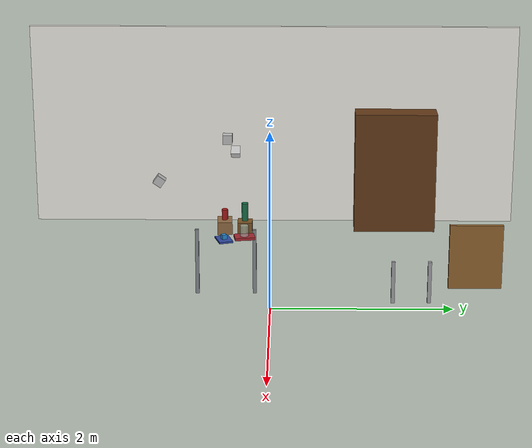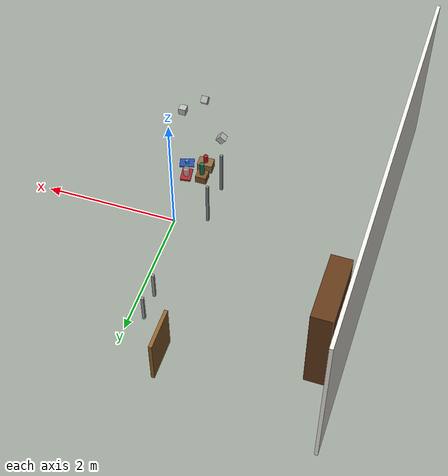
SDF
<sdf version="1.10">
 <world name="bps_room">
  <model name="wall_west">
   <static>true</static>
   <pose>-3 0 1.25 0 0 0</pose>
   <link name="link">
    <collision name="collision">
     <geometry><box><size>0.050000000000000003 6 2.5</size></box></geometry>
    </collision>
    <visual name="visual">
     <geometry><box><size>0.050000000000000003 6 2.5</size></box></geometry>
     <material>
      <ambient>0.930000007 0.920000017 0.889999986 1</ambient>
      <diffuse>0.930000007 0.920000017 0.889999986 1</diffuse>
     </material>
    </visual>
    <inertial>
     <mass>1</mass>
     <inertia><ixx>1</ixx><ixy>0</ixy><ixz>0</ixz><iyy>1</iyy><iyz>0</iyz><izz>1</izz></inertia>
    </inertial>
   </link>
  </model>
  <model name="bookshelf_body">
   <static>true</static>
   <pose>-2.7000000000000002 1.5 0.75 0 0 0</pose>
   <link name="link">
    <collision name="collision"><geometry><box><size>0.29999999999999999 1 1.5</size></box></geometry></collision>
    <visual name="visual">
     <geometry><box><size>0.29999999999999999 1 1.5</size></box></geometry>
     <material>
      <ambient>0.379999995 0.219999999 0.0900000036 1</ambient>
      <diffuse>0.379999995 0.219999999 0.0900000036 1</diffuse>
     </material>
    </visual>
    <inertial>
     <mass>1</mass>
     <inertia><ixx>1</ixx><ixy>0</ixy><ixz>0</ixz><iyy>1</iyy><iyz>0</iyz><izz>1</izz></inertia>
    </inertial>
   </link>
  </model>
  <model name="shelf_1">
   <static>true</static>
   <pose>-2.7000000000000002 1.5 0.40000000000000002 0 0 0</pose>
   <link name="link">
    <collision name="collision">
     <geometry><box><size>0.28000000000000003 0.94999999999999996 0.02</size></box></geometry>
    </collision>
    <visual name="visual">
     <geometry><box><size>0.28000000000000003 0.94999999999999996 0.02</size></box></geometry>
     <material>
      <ambient>0.5 0.319999993 0.140000001 1</ambient>
      <diffuse>0.5 0.319999993 0.140000001 1</diffuse>
     </material>
    </visual>
    <inertial>
     <mass>1</mass>
     <inertia><ixx>1</ixx><ixy>0</ixy><ixz>0</ixz><iyy>1</iyy><iyz>0</iyz><izz>1</izz></inertia>
    </inertial>
   </link>
  </model>
  <model name="shelf_2">
   <static>true</static>
   <pose>-2.7000000000000002 1.5 0.84999999999999998 0 0 0</pose>
   <link name="link">
    <collision name="collision">
     <geometry><box><size>0.28000000000000003 0.94999999999999996 0.02</size></box></geometry>
    </collision>
    <visual name="visual">
     <geometry><box><size>0.28000000000000003 0.94999999999999996 0.02</size></box></geometry>
     <material>
      <ambient>0.5 0.319999993 0.140000001 1</ambient>
      <diffuse>0.5 0.319999993 0.140000001 1</diffuse>
     </material>
    </visual>
    <inertial>
     <mass>1</mass>
     <inertia><ixx>1</ixx><ixy>0</ixy><ixz>0</ixz><iyy>1</iyy><iyz>0</iyz><izz>1</izz></inertia>
    </inertial>
   </link>
  </model>
  <model name="shelf_3">
   <static>true</static>
   <pose>-2.7000000000000002 1.5 1.25 0 0 0</pose>
   <link name="link">
    <collision name="collision">
     <geometry><box><size>0.28000000000000003 0.94999999999999996 0.02</size></box></geometry>
    </collision>
    <visual name="visual">
     <geometry><box><size>0.28000000000000003 0.94999999999999996 0.02</size></box></geometry>
     <material>
      <ambient>0.5 0.319999993 0.140000001 1</ambient>
      <diffuse>0.5 0.319999993 0.140000001 1</diffuse>
     </material>
    </visual>
    <inertial>
     <mass>1</mass>
     <inertia><ixx>1</ixx><ixy>0</ixy><ixz>0</ixz><iyy>1</iyy><iyz>0</iyz><izz>1</izz></inertia>
    </inertial>
   </link>
  </model>
  <model name="books_row1">
   <static>true</static>
   <pose>-2.6200000000000001 1.5 0.62 0 0 0</pose>
   <link name="link">
    <visual name="visual">
     <geometry><box><size>0.040000000000000001 0.80000000000000004 0.20000000000000001</size></box></geometry>
     <material>
      <ambient>0.779999971 0.180000007 0.180000007 1</ambient>
      <diffuse>0.779999971 0.180000007 0.180000007 1</diffuse>
     </material>
    </visual>
    <inertial>
     <mass>1</mass>
     <inertia><ixx>1</ixx><ixy>0</ixy><ixz>0</ixz><iyy>1</iyy><iyz>0</iyz><izz>1</izz></inertia>
    </inertial>
   </link>
  </model>
  <model name="books_row2">
   <static>true</static>
   <pose>-2.6200000000000001 1.5 1.0600000000000001 0 0 0</pose>
   <link name="link">
    <visual name="visual">
     <geometry><box><size>0.040000000000000001 0.69999999999999996 0.17999999999999999</size></box></geometry>
     <material>
      <ambient>0.180000007 0.319999993 0.720000029 1</ambient>
      <diffuse>0.180000007 0.319999993 0.720000029 1</diffuse>
     </material>
    </visual>
    <inertial>
     <mass>1</mass>
     <inertia><ixx>1</ixx><ixy>0</ixy><ixz>0</ixz><iyy>1</iyy><iyz>0</iyz><izz>1</izz></inertia>
    </inertial>
   </link>
  </model>
  <model name="desk_leg_left">
   <static>true</static>
   <pose>-0.65000000000000002 2.2999999999999998 0.375 0 0 0</pose>
   <link name="link">
    <collision name="collision">
     <geometry><box><size>0.050000000000000003 0.59999999999999998 0.75</size></box></geometry>
    </collision>
    <visual name="visual">
     <geometry><box><size>0.050000000000000003 0.59999999999999998 0.75</size></box></geometry>
     <material>
      <ambient>0.550000012 0.379999995 0.180000007 1</ambient>
      <diffuse>0.550000012 0.379999995 0.180000007 1</diffuse>
     </material>
    </visual>
    <inertial>
     <mass>1</mass>
     <inertia><ixx>1</ixx><ixy>0</ixy><ixz>0</ixz><iyy>1</iyy><iyz>0</iyz><izz>1</izz></inertia>
    </inertial>
   </link>
  </model>
  <model name="chair_leg_fl">
   <static>true</static>
   <pose>-0.20000000000000001 1.3500000000000001 0.23999999999999999 0 0 0</pose>
   <link name="link">
    <collision name="collision">
     <geometry><box><size>0.040000000000000001 0.040000000000000001 0.47999999999999998</size></box></geometry>
    </collision>
    <visual name="visual">
     <geometry><box><size>0.040000000000000001 0.040000000000000001 0.47999999999999998</size></box></geometry>
     <material>
      <ambient>0.600000024 0.600000024 0.620000005 1</ambient>
      <diffuse>0.600000024 0.600000024 0.620000005 1</diffuse>
     </material>
    </visual>
    <inertial>
     <mass>1</mass>
     <inertia><ixx>1</ixx><ixy>0</ixy><ixz>0</ixz><iyy>1</iyy><iyz>0</iyz><izz>1</izz></inertia>
    </inertial>
   </link>
  </model>
  <model name="chair_leg_bl">
   <static>true</static>
   <pose>-0.20000000000000001 1.75 0.23999999999999999 0 0 0</pose>
   <link name="link">
    <collision name="collision">
     <geometry><box><size>0.040000000000000001 0.040000000000000001 0.47999999999999998</size></box></geometry>
    </collision>
    <visual name="visual">
     <geometry><box><size>0.040000000000000001 0.040000000000000001 0.47999999999999998</size></box></geometry>
     <material>
      <ambient>0.600000024 0.600000024 0.620000005 1</ambient>
      <diffuse>0.600000024 0.600000024 0.620000005 1</diffuse>
     </material>
    </visual>
    <inertial>
     <mass>1</mass>
     <inertia><ixx>1</ixx><ixy>0</ixy><ixz>0</ixz><iyy>1</iyy><iyz>0</iyz><izz>1</izz></inertia>
    </inertial>
   </link>
  </model>
  <model name="table_leg_fl">
   <static>true</static>
   <pose>-0.46999999999999997 -0.81999999999999995 0.375 0 0 0</pose>
   <link name="link">
    <collision name="collision">
     <geometry><box><size>0.040000000000000001 0.040000000000000001 0.75</size></box></geometry>
    </collision>
    <visual name="visual">
     <geometry><box><size>0.040000000000000001 0.040000000000000001 0.75</size></box></geometry>
     <material>
      <ambient>0.5 0.519999981 0.540000021 1</ambient>
      <diffuse>0.5 0.519999981 0.540000021 1</diffuse>
     </material>
    </visual>
    <inertial>
     <mass>1</mass>
     <inertia><ixx>1</ixx><ixy>0</ixy><ixz>0</ixz><iyy>1</iyy><iyz>0</iyz><izz>1</izz></inertia>
    </inertial>
   </link>
  </model>
  <model name="table_leg_bl">
   <static>true</static>
   <pose>-0.46999999999999997 -0.17999999999999999 0.375 0 0 0</pose>
   <link name="link">
    <collision name="collision">
     <geometry><box><size>0.040000000000000001 0.040000000000000001 0.75</size></box></geometry>
    </collision>
    <visual name="visual">
     <geometry><box><size>0.040000000000000001 0.040000000000000001 0.75</size></box></geometry>
     <material>
      <ambient>0.5 0.519999981 0.540000021 1</ambient>
      <diffuse>0.5 0.519999981 0.540000021 1</diffuse>
     </material>
    </visual>
    <inertial>
     <mass>1</mass>
     <inertia><ixx>1</ixx><ixy>0</ixy><ixz>0</ixz><iyy>1</iyy><iyz>0</iyz><izz>1</izz></inertia>
    </inertial>
   </link>
  </model>
  <model name="obj_storage_box">
   <static>false</static>
   <pose>-0.34000000000000002 -0.5 0.83999999999999997 0 0 0.049999999999999989</pose>
   <link name="link">
    <collision name="collision">
     <geometry><box><size>0.22 0.16 0.14000000000000001</size></box></geometry>
    </collision>
    <visual name="visual">
     <geometry><box><size>0.22 0.16 0.14000000000000001</size></box></geometry>
     <material>
      <ambient>0.550000012 0.400000006 0.25 1</ambient>
      <diffuse>0.550000012 0.400000006 0.25 1</diffuse>
      <specular>0.200000003 0.200000003 0.200000003 1</specular>
     </material>
     <plugin name="gz::sim::systems::Label" filename="gz-sim-label-system"><label>3</label></plugin>
    </visual>
    <inertial>
     <mass>1</mass>
     <inertia><ixx>1</ixx><ixy>0</ixy><ixz>0</ixz><iyy>1</iyy><iyz>0</iyz><izz>1</izz></inertia>
    </inertial>
    <sensor name="obj_storage_box_contact_sensor" type="contact">
     <contact><collision>collision</collision></contact>
     <update_rate>30</update_rate>
     <always_on>true</always_on>
    </sensor>
   </link>
  </model>
  <model name="obj_wooden_crate">
   <static>false</static>
   <pose>-0.35999999999999999 -0.28000000000000003 0.82999999999999996 0 0 0</pose>
   <link name="link">
    <collision name="collision"><geometry><box><size>0.16 0.16 0.12</size></box></geometry></collision>
    <visual name="visual">
     <geometry><box><size>0.16 0.16 0.12</size></box></geometry>
     <material>
      <ambient>0.479999989 0.319999993 0.140000001 1</ambient>
      <diffuse>0.479999989 0.319999993 0.140000001 1</diffuse>
      <specular>0.150000006 0.150000006 0.150000006 1</specular>
     </material>
     <plugin name="gz::sim::systems::Label" filename="gz-sim-label-system"><label>4</label></plugin>
    </visual>
    <inertial>
     <mass>1</mass>
     <inertia><ixx>1</ixx><ixy>0</ixy><ixz>0</ixz><iyy>1</iyy><iyz>0</iyz><izz>1</izz></inertia>
    </inertial>
    <sensor name="obj_wooden_crate_contact_sensor" type="contact">
     <contact><collision>collision</collision></contact>
     <update_rate>30</update_rate>
     <always_on>true</always_on>
    </sensor>
   </link>
  </model>
  <model name="obj_bottle">
   <static>false</static>
   <pose>-0.35999999999999999 -0.28000000000000003 0.995 0 0 0.20000000000000001</pose>
   <link name="link">
    <collision name="collision">
     <geometry>
      <cylinder><radius>0.035000000000000003</radius><length>0.20000000000000001</length></cylinder>
     </geometry>
    </collision>
    <visual name="visual">
     <geometry>
      <cylinder><radius>0.035000000000000003</radius><length>0.20000000000000001</length></cylinder>
     </geometry>
     <material>
      <ambient>0.100000001 0.419999987 0.280000001 1</ambient>
      <diffuse>0.100000001 0.419999987 0.280000001 1</diffuse>
      <specular>0.400000006 0.400000006 0.400000006 1</specular>
     </material>
     <plugin name="gz::sim::systems::Label" filename="gz-sim-label-system"><label>5</label></plugin>
    </visual>
    <inertial>
     <mass>1</mass>
     <inertia><ixx>1</ixx><ixy>0</ixy><ixz>0</ixz><iyy>1</iyy><iyz>0</iyz><izz>1</izz></inertia>
    </inertial>
    <sensor name="obj_bottle_contact_sensor" type="contact">
     <contact><collision>collision</collision></contact>
     <update_rate>30</update_rate>
     <always_on>true</always_on>
    </sensor>
   </link>
  </model>
  <model name="obj_notebook">
   <static>false</static>
   <pose>-0.050000000000000003 -0.5 0.78000000000000003 0 0 0.3000000000000001</pose>
   <link name="link">
    <collision name="collision">
     <geometry><box><size>0.20999999999999999 0.14999999999999999 0.02</size></box></geometry>
    </collision>
    <visual name="visual">
     <geometry><box><size>0.20999999999999999 0.14999999999999999 0.02</size></box></geometry>
     <material>
      <ambient>0.180000007 0.280000001 0.620000005 1</ambient>
      <diffuse>0.180000007 0.280000001 0.620000005 1</diffuse>
      <specular>0.200000003 0.200000003 0.200000003 1</specular>
     </material>
     <plugin name="gz::sim::systems::Label" filename="gz-sim-label-system"><label>9</label></plugin>
    </visual>
    <inertial>
     <mass>1</mass>
     <inertia><ixx>1</ixx><ixy>0</ixy><ixz>0</ixz><iyy>1</iyy><iyz>0</iyz><izz>1</izz></inertia>
    </inertial>
    <sensor name="obj_notebook_contact_sensor" type="contact">
     <contact><collision>collision</collision></contact>
     <update_rate>30</update_rate>
     <always_on>true</always_on>
    </sensor>
   </link>
  </model>
  <model name="obj_book">
   <static>false</static>
   <pose>-0.12 -0.28000000000000003 0.78500000000000003 0 0 0.14999999999999994</pose>
   <link name="link">
    <collision name="collision">
     <geometry><box><size>0.14999999999999999 0.22 0.029999999999999999</size></box></geometry>
    </collision>
    <visual name="visual">
     <geometry><box><size>0.14999999999999999 0.22 0.029999999999999999</size></box></geometry>
     <material>
      <ambient>0.620000005 0.150000006 0.180000007 1</ambient>
      <diffuse>0.620000005 0.150000006 0.180000007 1</diffuse>
      <specular>0.150000006 0.150000006 0.150000006 1</specular>
     </material>
     <plugin name="gz::sim::systems::Label" filename="gz-sim-label-system"><label>10</label></plugin>
    </visual>
    <inertial>
     <mass>1</mass>
     <inertia><ixx>1</ixx><ixy>0</ixy><ixz>0</ixz><iyy>1</iyy><iyz>0</iyz><izz>1</izz></inertia>
    </inertial>
    <sensor name="obj_book_contact_sensor" type="contact">
     <contact><collision>collision</collision></contact>
     <update_rate>30</update_rate>
     <always_on>true</always_on>
    </sensor>
   </link>
  </model>
  <model name="obj_toy_cube">
   <static>false</static>
   <pose>-0.050000000000000003 -0.5 0.81499999999999995 0 0 0.5</pose>
   <link name="link">
    <collision name="collision">
     <geometry><box><size>0.050000000000000003 0.050000000000000003 0.050000000000000003</size></box></geometry>
    </collision>
    <visual name="visual">
     <geometry><box><size>0.050000000000000003 0.050000000000000003 0.050000000000000003</size></box></geometry>
     <material>
      <ambient>0.150000006 0.550000012 0.850000024 1</ambient>
      <diffuse>0.150000006 0.550000012 0.850000024 1</diffuse>
      <specular>0.300000012 0.300000012 0.300000012 1</specular>
     </material>
     <plugin name="gz::sim::systems::Label" filename="gz-sim-label-system"><label>11</label></plugin>
    </visual>
    <inertial>
     <mass>1</mass>
     <inertia><ixx>1</ixx><ixy>0</ixy><ixz>0</ixz><iyy>1</iyy><iyz>0</iyz><izz>1</izz></inertia>
    </inertial>
    <sensor name="obj_toy_cube_contact_sensor" type="contact">
     <contact><collision>collision</collision></contact>
     <update_rate>30</update_rate>
     <always_on>true</always_on>
    </sensor>
   </link>
  </model>
  <model name="obj_can">
   <static>false</static>
   <pose>-0.34000000000000002 -0.5 0.97250000000000003 0 0 0</pose>
   <link name="link">
    <collision name="collision">
     <geometry><cylinder><radius>0.033000000000000002</radius><length>0.115</length></cylinder></geometry>
    </collision>
    <visual name="visual">
     <geometry><cylinder><radius>0.033000000000000002</radius><length>0.115</length></cylinder></geometry>
     <material>
      <ambient>0.649999976 0.100000001 0.100000001 1</ambient>
      <diffuse>0.649999976 0.100000001 0.100000001 1</diffuse>
      <specular>0.600000024 0.600000024 0.600000024 1</specular>
     </material>
     <plugin name="gz::sim::systems::Label" filename="gz-sim-label-system"><label>13</label></plugin>
    </visual>
    <inertial>
     <mass>1</mass>
     <inertia><ixx>1</ixx><ixy>0</ixy><ixz>0</ixz><iyy>1</iyy><iyz>0</iyz><izz>1</izz></inertia>
    </inertial>
    <sensor name="obj_can_contact_sensor" type="contact">
     <contact><collision>collision</collision></contact>
     <update_rate>30</update_rate>
     <always_on>true</always_on>
    </sensor>
   </link>
  </model>
  <model name="obj_glass_jar">
   <static>false</static>
   <pose>-0.12 -0.28000000000000003 0.85999999999999999 0 0 0</pose>
   <link name="link">
    <collision name="collision">
     <geometry><cylinder><radius>0.044999999999999998</radius><length>0.12</length></cylinder></geometry>
    </collision>
    <visual name="visual">
     <geometry><cylinder><radius>0.044999999999999998</radius><length>0.12</length></cylinder></geometry>
     <material>
      <ambient>0.75 0.879999995 0.850000024 0.550000012</ambient>
      <diffuse>0.75 0.879999995 0.850000024 0.550000012</diffuse>
      <specular>0.600000024 0.600000024 0.600000024 1</specular>
     </material>
     <plugin name="gz::sim::systems::Label" filename="gz-sim-label-system"><label>14</label></plugin>
    </visual>
    <inertial>
     <mass>1</mass>
     <inertia><ixx>1</ixx><ixy>0</ixy><ixz>0</ixz><iyy>1</iyy><iyz>0</iyz><izz>1</izz></inertia>
    </inertial>
    <sensor name="obj_glass_jar_contact_sensor" type="contact">
     <contact><collision>collision</collision></contact>
     <update_rate>30</update_rate>
     <always_on>true</always_on>
    </sensor>
   </link>
  </model>
  <model name="depth_camera">
   <static>true</static>
   <pose>-0.092614345252513885 -0.5 1.9686205387115479 3.1415899979989477 1.57079000476762 3.1415899979989477</pose>
   <link name="link">
    <pose>0.050000000000000003 0.050000000000000003 0.050000000000000003 0 0 0</pose>
    <inertial>
     <mass>0.10000000000000001</mass>
     <inertia>
      <ixx>0.00016666700000000001</ixx>
      <iyy>0.00016666700000000001</iyy>
      <izz>0.00016666700000000001</izz>
      <ixy>0</ixy>
      <ixz>0</ixz>
      <iyz>0</iyz>
     </inertia>
    </inertial>
    <collision name="collision">
     <geometry><box><size>0.10000000000000001 0.10000000000000001 0.10000000000000001</size></box></geometry>
    </collision>
    <visual name="visual">
     <geometry><box><size>0.10000000000000001 0.10000000000000001 0.10000000000000001</size></box></geometry>
    </visual>
    <sensor name="depth_camera1" type="depth_camera">
     <topic>depth_camera</topic>
     <update_rate>10</update_rate>
     <enable_metrics>false</enable_metrics>
     <camera>
      <horizontal_fov>1.2</horizontal_fov>
      <image>
       <width>640</width>
       <height>480</height>
       <format>R_FLOAT32</format>
       <anti_aliasing>4</anti_aliasing>
      </image>
      <camera_info_topic>__default__</camera_info_topic>
      <triggered>false</triggered>
      <clip><near>0.10000000000000001</near><far>2</far></clip>
      <save enabled="false"><path>__default__</path></save>
      <visibility_mask>4294967295</visibility_mask>
      <noise><type>none</type><mean>0</mean><stddev>0</stddev></noise>
      <distortion><k1>0</k1><k2>0</k2><k3>0</k3><p1>0</p1><p2>0</p2><center>0.5 0.5</center></distortion>
      <lens>
       <type>stereographic</type>
       <scale_to_hfov>true</scale_to_hfov>
       <cutoff_angle>1.5707963267948966</cutoff_angle>
       <env_texture_size>256</env_texture_size>
      </lens>
     </camera>
    </sensor>
    <sensor name="rgb_camera" type="camera">
     <topic>rgb_camera</topic>
     <update_rate>10</update_rate>
     <enable_metrics>false</enable_metrics>
     <camera>
      <horizontal_fov>1.2</horizontal_fov>
      <image><width>640</width><height>480</height><format>RGB_INT8</format><anti_aliasing>4</anti_aliasing></image>
      <camera_info_topic>__default__</camera_info_topic>
      <triggered>false</triggered>
      <clip><near>0.10000000000000001</near><far>2</far></clip>
      <save enabled="false"><path>__default__</path></save>
      <visibility_mask>4294967295</visibility_mask>
      <noise><type>none</type><mean>0</mean><stddev>0</stddev></noise>
      <distortion><k1>0</k1><k2>0</k2><k3>0</k3><p1>0</p1><p2>0</p2><center>0.5 0.5</center></distortion>
      <lens>
       <type>stereographic</type>
       <scale_to_hfov>true</scale_to_hfov>
       <cutoff_angle>1.5707963267948966</cutoff_angle>
       <env_texture_size>256</env_texture_size>
      </lens>
     </camera>
    </sensor>
    <sensor name="semantic_camera" type="segmentation_camera">
     <topic>semantic_camera</topic>
     <update_rate>10</update_rate>
     <enable_metrics>false</enable_metrics>
     <camera>
      <horizontal_fov>1.2</horizontal_fov>
      <image><width>640</width><height>480</height></image>
      <clip><near>0.1</near><far>100</far></clip>
      <segmentation_type>semantic</segmentation_type>
     </camera>
    </sensor>
   </link>
  </model>
  <model name="depth_camera_v4">
   <static>true</static>
   <pose>-0.691454276353206 -0.4386666666666666 1.6127111097856446 -0.0 0.8726646259971648 -8.636002062691952e-17</pose>
   <link name="link">
    <pose>0.050000000000000003 0.050000000000000003 0.050000000000000003 0 0 0</pose>
    <inertial>
     <mass>0.10000000000000001</mass>
     <inertia>
      <ixx>0.00016666700000000001</ixx>
      <iyy>0.00016666700000000001</iyy>
      <izz>0.00016666700000000001</izz>
      <ixy>0</ixy>
      <ixz>0</ixz>
      <iyz>0</iyz>
     </inertia>
    </inertial>
    <collision name="collision">
     <geometry><box><size>0.10000000000000001 0.10000000000000001 0.10000000000000001</size></box></geometry>
    </collision>
    <visual name="visual">
     <geometry><box><size>0.10000000000000001 0.10000000000000001 0.10000000000000001</size></box></geometry>
    </visual>
    <sensor name="depth_camera4" type="depth_camera">
     <topic>depth_camera_v4</topic>
     <update_rate>10</update_rate>
     <enable_metrics>false</enable_metrics>
     <camera>
      <horizontal_fov>1.2</horizontal_fov>
      <image>
       <width>640</width>
       <height>480</height>
       <format>R_FLOAT32</format>
       <anti_aliasing>4</anti_aliasing>
      </image>
      <camera_info_topic>__default__</camera_info_topic>
      <triggered>false</triggered>
      <clip><near>0.10000000000000001</near><far>2</far></clip>
      <save enabled="false"><path>__default__</path></save>
      <visibility_mask>4294967295</visibility_mask>
      <noise><type>none</type><mean>0</mean><stddev>0</stddev></noise>
      <distortion><k1>0</k1><k2>0</k2><k3>0</k3><p1>0</p1><p2>0</p2><center>0.5 0.5</center></distortion>
      <lens>
       <type>stereographic</type>
       <scale_to_hfov>true</scale_to_hfov>
       <cutoff_angle>1.5707963267948966</cutoff_angle>
       <env_texture_size>256</env_texture_size>
      </lens>
     </camera>
    </sensor>
    <sensor name="rgb_camera4" type="camera">
     <topic>rgb_camera_v4</topic>
     <update_rate>10</update_rate>
     <enable_metrics>false</enable_metrics>
     <camera>
      <horizontal_fov>1.2</horizontal_fov>
      <image><width>640</width><height>480</height><format>RGB_INT8</format><anti_aliasing>4</anti_aliasing></image>
      <camera_info_topic>__default__</camera_info_topic>
      <triggered>false</triggered>
      <clip><near>0.10000000000000001</near><far>2</far></clip>
      <save enabled="false"><path>__default__</path></save>
      <visibility_mask>4294967295</visibility_mask>
      <noise><type>none</type><mean>0</mean><stddev>0</stddev></noise>
      <distortion><k1>0</k1><k2>0</k2><k3>0</k3><p1>0</p1><p2>0</p2><center>0.5 0.5</center></distortion>
      <lens>
       <type>stereographic</type>
       <scale_to_hfov>true</scale_to_hfov>
       <cutoff_angle>1.5707963267948966</cutoff_angle>
       <env_texture_size>256</env_texture_size>
      </lens>
     </camera>
    </sensor>
    <sensor name="semantic_camera4" type="segmentation_camera">
     <topic>semantic_camera_v4</topic>
     <update_rate>10</update_rate>
     <enable_metrics>false</enable_metrics>
     <camera>
      <horizontal_fov>1.2</horizontal_fov>
      <image><width>640</width><height>480</height></image>
      <clip><near>0.1</near><far>100</far></clip>
      <segmentation_type>semantic</segmentation_type>
     </camera>
    </sensor>
   </link>
  </model>
  <model name="depth_camera_v5">
   <static>true</static>
   <pose>-0.048666666666666816 -1.2578187109556584 1.4202431030177127 -0.0 0.6108652381980154 1.5707963267948963</pose>
   <link name="link">
    <pose>0.050000000000000003 0.050000000000000003 0.050000000000000003 0 0 0</pose>
    <inertial>
     <mass>0.10000000000000001</mass>
     <inertia>
      <ixx>0.00016666700000000001</ixx>
      <iyy>0.00016666700000000001</iyy>
      <izz>0.00016666700000000001</izz>
      <ixy>0</ixy>
      <ixz>0</ixz>
      <iyz>0</iyz>
     </inertia>
    </inertial>
    <collision name="collision">
     <geometry><box><size>0.10000000000000001 0.10000000000000001 0.10000000000000001</size></box></geometry>
    </collision>
    <visual name="visual">
     <geometry><box><size>0.10000000000000001 0.10000000000000001 0.10000000000000001</size></box></geometry>
    </visual>
    <sensor name="depth_camera5" type="depth_camera">
     <topic>depth_camera_v5</topic>
     <update_rate>10</update_rate>
     <enable_metrics>false</enable_metrics>
     <camera>
      <horizontal_fov>1.2</horizontal_fov>
      <image>
       <width>640</width>
       <height>480</height>
       <format>R_FLOAT32</format>
       <anti_aliasing>4</anti_aliasing>
      </image>
      <camera_info_topic>__default__</camera_info_topic>
      <triggered>false</triggered>
      <clip><near>0.10000000000000001</near><far>2</far></clip>
      <save enabled="false"><path>__default__</path></save>
      <visibility_mask>4294967295</visibility_mask>
      <noise><type>none</type><mean>0</mean><stddev>0</stddev></noise>
      <distortion><k1>0</k1><k2>0</k2><k3>0</k3><p1>0</p1><p2>0</p2><center>0.5 0.5</center></distortion>
      <lens>
       <type>stereographic</type>
       <scale_to_hfov>true</scale_to_hfov>
       <cutoff_angle>1.5707963267948966</cutoff_angle>
       <env_texture_size>256</env_texture_size>
      </lens>
     </camera>
    </sensor>
    <sensor name="rgb_camera5" type="camera">
     <topic>rgb_camera_v5</topic>
     <update_rate>10</update_rate>
     <enable_metrics>false</enable_metrics>
     <camera>
      <horizontal_fov>1.2</horizontal_fov>
      <image><width>640</width><height>480</height><format>RGB_INT8</format><anti_aliasing>4</anti_aliasing></image>
      <camera_info_topic>__default__</camera_info_topic>
      <triggered>false</triggered>
      <clip><near>0.10000000000000001</near><far>2</far></clip>
      <save enabled="false"><path>__default__</path></save>
      <visibility_mask>4294967295</visibility_mask>
      <noise><type>none</type><mean>0</mean><stddev>0</stddev></noise>
      <distortion><k1>0</k1><k2>0</k2><k3>0</k3><p1>0</p1><p2>0</p2><center>0.5 0.5</center></distortion>
      <lens>
       <type>stereographic</type>
       <scale_to_hfov>true</scale_to_hfov>
       <cutoff_angle>1.5707963267948966</cutoff_angle>
       <env_texture_size>256</env_texture_size>
      </lens>
     </camera>
    </sensor>
    <sensor name="semantic_camera5" type="segmentation_camera">
     <topic>semantic_camera_v5</topic>
     <update_rate>10</update_rate>
     <enable_metrics>false</enable_metrics>
     <camera>
      <horizontal_fov>1.2</horizontal_fov>
      <image><width>640</width><height>480</height></image>
      <clip><near>0.1</near><far>100</far></clip>
      <segmentation_type>semantic</segmentation_type>
     </camera>
    </sensor>
   </link>
  </model>
 </world>
</sdf>
